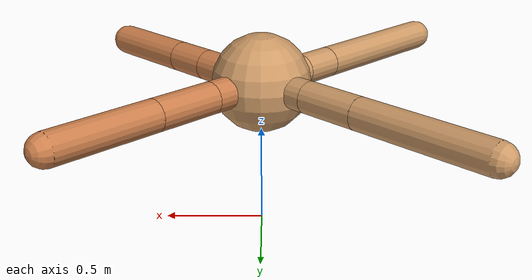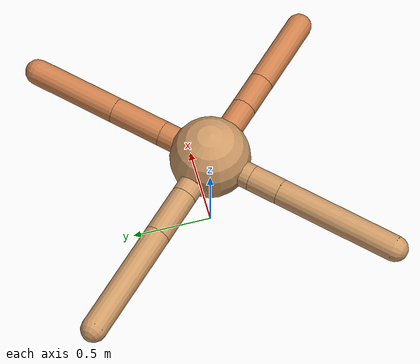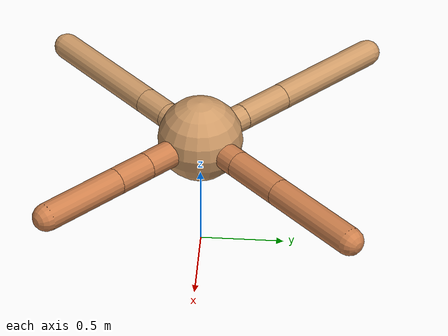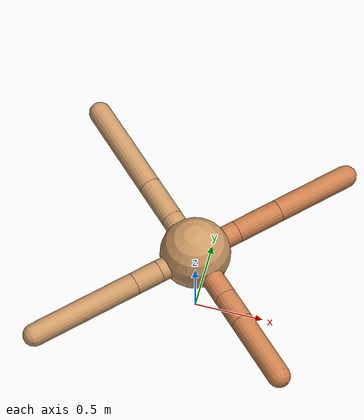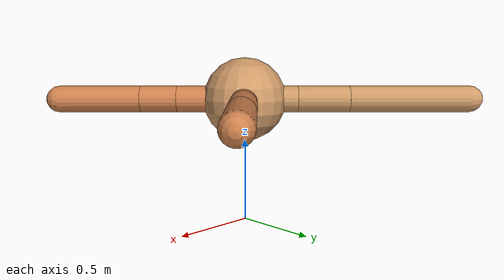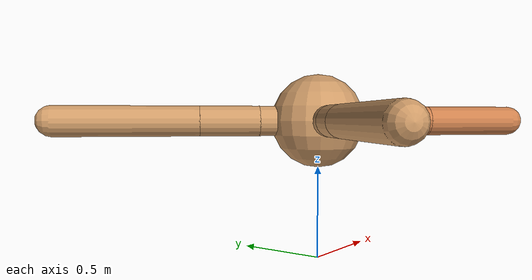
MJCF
<mujoco model="ant">
  <compiler angle="degree" coordinate="local" inertiafromgeom="true" />
  <option integrator="RK4" timestep="0.01" />
  <custom>
    <numeric data="0.0 0.0 0.55 1.0 0.0 0.0 0.0 0.0 1.0 0.0 -1.0 0.0 -1.0 0.0 1.0" name="init_qpos" />
  </custom>
  <default>
    <joint armature="1" damping="1" limited="true" />
    <geom conaffinity="0" condim="3" density="5.0" friction="1.5 0.1 0.1" margin="0.01" rgba="0.8 0.6 0.4 1" />
  </default>
  <worldbody>
    <body name="torso" pos="0 0 0.75">
      <geom name="torso_geom" pos="0 0 0" size="0.25" type="sphere" />

      <body name="front_left_leg" pos="0 0 0">
        <geom fromto="0.0 0.0 0.0 0.2361844697403012 0.2361844697403012 0.0" name="aux_1_geom" size="0.08" type="capsule" rgba=".8 .5 .3 1" />
        <body name="aux_1" pos="0.2361844697403012 0.2361844697403012 0.0">
          <joint axis="0 0 1" name="hip_1" pos="0.0 0.0 0.0" range="-40 40" type="hinge" />
          <geom fromto="0.0 0.0 0.0 0.23847783241119647 0.23847783241119647 0.0" name="left_leg_geom" size="0.08" type="capsule" rgba=".8 .5 .3 1" />
          <body pos="0.23847783241119647 0.23847783241119647 0.0" name="front_left_foot">
            <joint axis="-1 1 0" name="ankle_1" pos="0.0 0.0 0.0" range="30 100" type="hinge" />
            <geom fromto="0.0 0.0 0.0 0.40020473817915525 0.40020473817915525 0.0" name="left_ankle_geom" size="0.08" type="capsule" rgba=".8 .5 .3 1" />
          </body>
        </body>
      </body>
      <body name="front_right_leg" pos="0 0 0">
        <geom fromto="0.0 0.0 0.0 -0.2266200858434213 0.2266200858434213 0.0" name="aux_2_geom" size="0.08" type="capsule" />
        <body name="aux_2" pos="-0.2266200858434213 0.2266200858434213 0.0">
          <joint axis="0 0 1" name="hip_2" pos="0.0 0.0 0.0" range="-40 40" type="hinge" />
          <geom fromto="0.0 0.0 0.0 -0.2198200757333134 0.2198200757333134 0.0" name="right_leg_geom" size="0.08" type="capsule" />
          <body pos="-0.2198200757333134 0.2198200757333134 0.0" name="front_right_foot">
            <joint axis="1 1 0" name="ankle_2" pos="0.0 0.0 0.0" range="-100 -30" type="hinge" />
            <geom fromto="0.0 0.0 0.0 -0.5129960053319577 0.5129960053319577 0.0" name="right_ankle_geom" size="0.08" type="capsule" />
          </body>
        </body>
      </body>
      <body name="left_back_leg" pos="0 0 0">
        <geom fromto="0.0 0.0 0.0 -0.20843904761102078 -0.20843904761102078 0.0" name="aux_3_geom" size="0.08" type="capsule" />
        <body name="aux_3" pos="-0.20843904761102078 -0.20843904761102078 0.0">
          <joint axis="0 0 1" name="hip_3" pos="0.0 0.0 0.0" range="-40 40" type="hinge" />
          <geom fromto="0.0 0.0 0.0 -0.1380613600692921 -0.1380613600692921 0.0" name="back_leg_geom" size="0.08" type="capsule" />
          <body pos="-0.1380613600692921 -0.1380613600692921 0.0" name="left_back_foot">
            <joint axis="-1 1 0" name="ankle_3" pos="0.0 0.0 0.0" range="-100 -30" type="hinge" />
            <geom fromto="0.0 0.0 0.0 -0.5539754464845258 -0.5539754464845258 0.0" name="third_ankle_geom" size="0.08" type="capsule" />
          </body>
        </body>
      </body>
      <body name="right_back_leg" pos="0 0 0">
        <geom fromto="0.0 0.0 0.0 0.2880942973257576 -0.2880942973257576 0.0" name="aux_4_geom" size="0.08" type="capsule" rgba=".8 .5 .3 1" />
        <body name="aux_4" pos="0.2880942973257576 -0.2880942973257576 0.0">
          <joint axis="0 0 1" name="hip_4" pos="0.0 0.0 0.0" range="-40 40" type="hinge" />
          <geom fromto="0.0 0.0 0.0 0.15431138499264097 -0.15431138499264097 0.0" name="rightback_leg_geom" size="0.08" type="capsule" rgba=".8 .5 .3 1" />
          <body pos="0.15431138499264097 -0.15431138499264097 0.0" name="right_back_foot">
            <joint axis="1 1 0" name="ankle_4" pos="0.0 0.0 0.0" range="30 100" type="hinge" />
            <geom fromto="0.0 0.0 0.0 0.3439652902331022 -0.3439652902331022 0.0" name="fourth_ankle_geom" size="0.08" type="capsule" rgba=".8 .5 .3 1" />
          </body>
        </body>
      </body>
    </body>
  </worldbody>
  <actuator>
    <motor ctrllimited="true" ctrlrange="-1.0 1.0" joint="hip_4" gear="150" />
    <motor ctrllimited="true" ctrlrange="-1.0 1.0" joint="ankle_4" gear="150" />
    <motor ctrllimited="true" ctrlrange="-1.0 1.0" joint="hip_1" gear="150" />
    <motor ctrllimited="true" ctrlrange="-1.0 1.0" joint="ankle_1" gear="150" />
    <motor ctrllimited="true" ctrlrange="-1.0 1.0" joint="hip_2" gear="150" />
    <motor ctrllimited="true" ctrlrange="-1.0 1.0" joint="ankle_2" gear="150" />
    <motor ctrllimited="true" ctrlrange="-1.0 1.0" joint="hip_3" gear="150" />
    <motor ctrllimited="true" ctrlrange="-1.0 1.0" joint="ankle_3" gear="150" />
  </actuator>
</mujoco>
